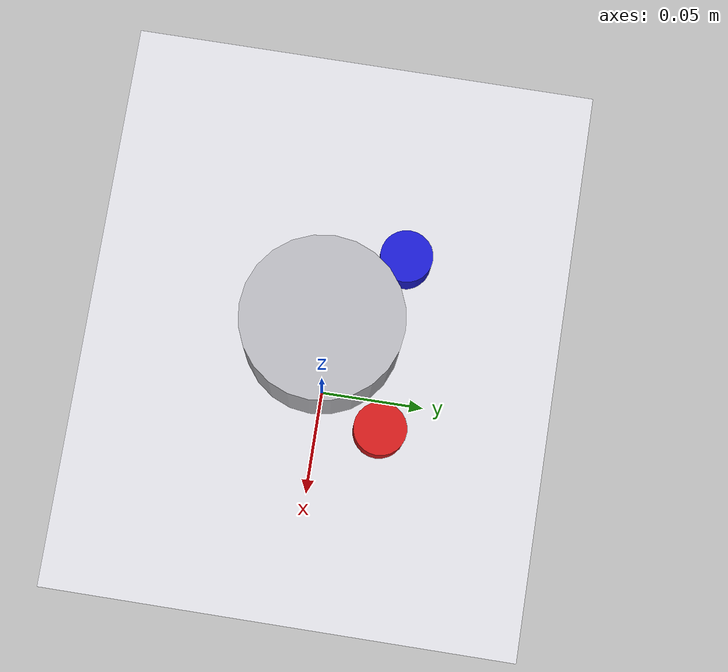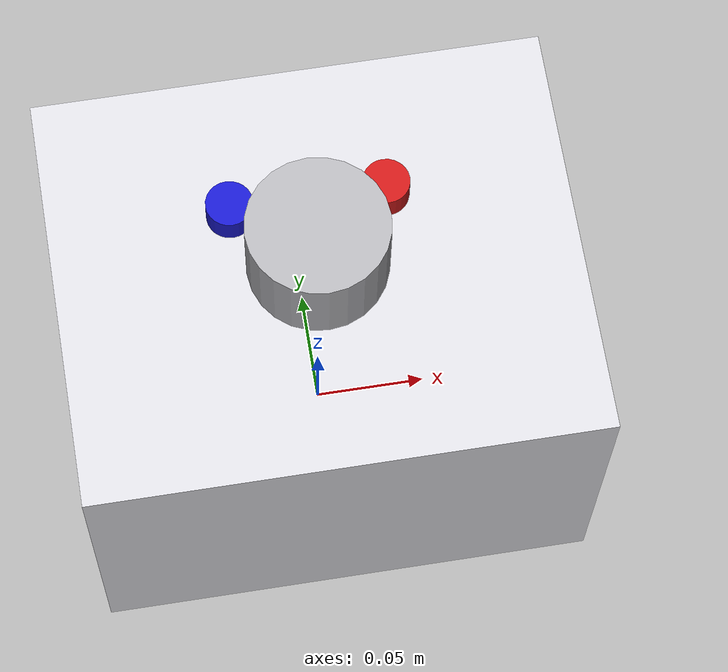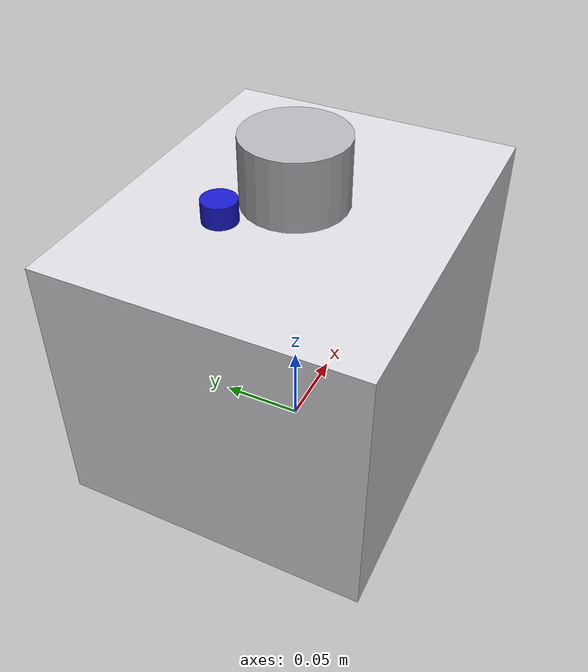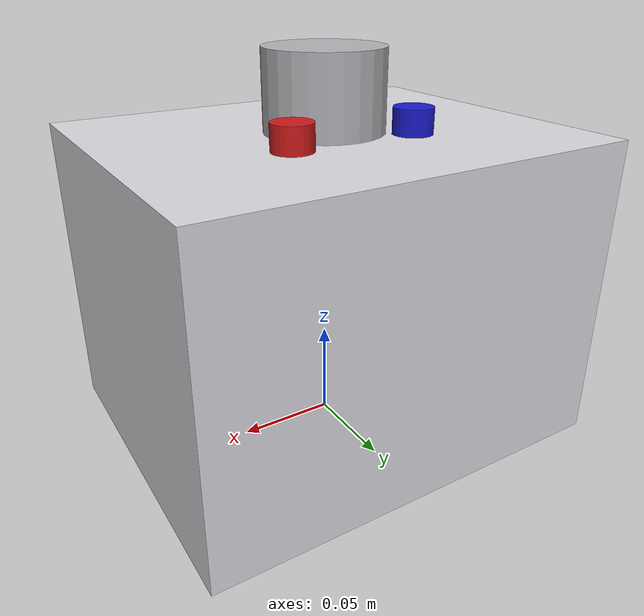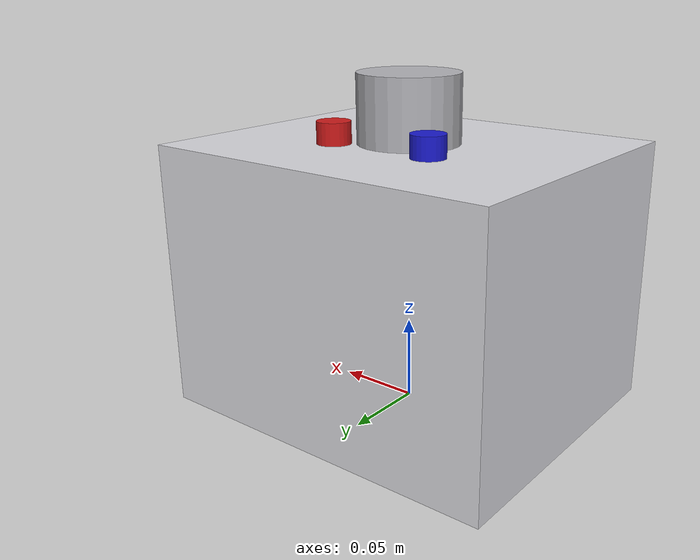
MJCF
<?xml version="1.0" encoding="utf-8"?>
<mujoco model="capsule_filling_machine">
  <compiler angle="radian" autolimits="true"/>
  <default>
    <default class="body"><geom contype="1" conaffinity="1"/></default>
  </default>
  <worldbody>
    <body name="base">
      <geom type="box" size="0.11 0.09 0.08" pos="0 0 0.08" rgba="0.85 0.85 0.87 1" class="body"/>
      <geom type="box" size="0.033 0.0045 0.02" pos="-0.055 -0.081 0.12" rgba="0.9 0.7 0.1 1" class="body"/>
      <geom type="cylinder" size="0.01 0.008" pos="-0.033 0.027 0.165" rgba="0.1 0.1 0.8 1" class="body"/>
      <geom type="cylinder" size="0.03 0.02" pos="0 0 0.18" rgba="0.7 0.7 0.72 1" class="body"/>
      <body name="knob" pos="0.033 0.027 0.165">
        <joint name="knob_joint" type="hinge" axis="0 0 1" range="-3.14159 3.14159" damping="0.3" frictionloss="0.1"/>
  <geom type="cylinder" size="0.01 0.008" pos="0 0 0" rgba="0.8 0.1 0.1 1" class="body"/>
      </body>
    </body>
  </worldbody>
</mujoco>
